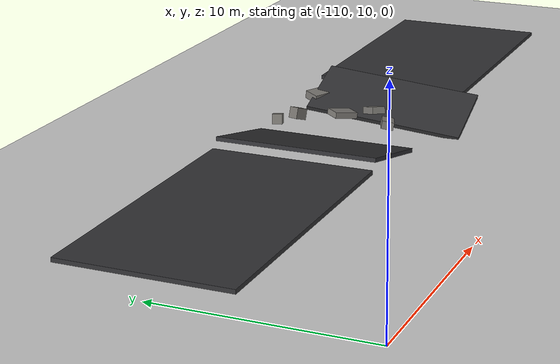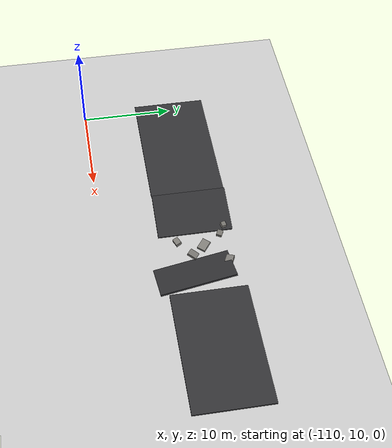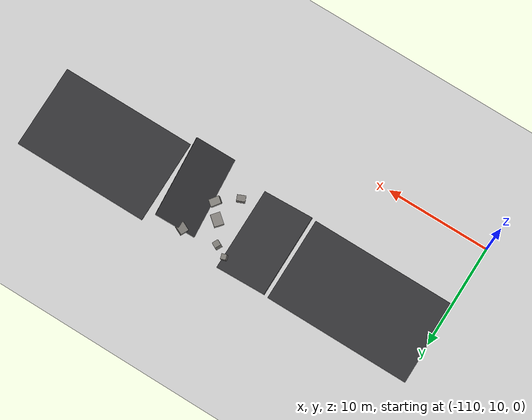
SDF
<sdf version="1.9">
 <world name="default">
  <physics type="ode">
   <max_step_size>0.004</max_step_size>
   <real_time_factor>1.0</real_time_factor>
   <real_time_update_rate>250</real_time_update_rate>
  </physics>
  <gravity>0 0 -9.8</gravity>
  <magnetic_field>6e-06 2.3e-05 -4.2e-05</magnetic_field>
  <atmosphere type="adiabatic"/>
  <scene>
   <grid>false</grid>
   <ambient>0.4 0.4 0.4 1</ambient>
   <background>0.7 0.7 0.7 1</background>
   <shadows>true</shadows>
  </scene>
  <model name="ground_plane">
   <static>true</static>
   <link name="link">
    <collision name="collision">
     <geometry><plane><normal>0 0 1</normal><size>1 1</size></plane></geometry>
    </collision>
    <visual name="visual">
     <geometry><plane><normal>0 0 1</normal><size>1500 1500</size></plane></geometry>
     <material>
      <ambient>0.8 0.8 0.8 1</ambient>
      <diffuse>0.8 0.8 0.8 1</diffuse>
      <specular>0.8 0.8 0.8 1</specular>
     </material>
    </visual>
    <inertial>
     <mass>1</mass>
     <inertia><ixx>1</ixx><ixy>0</ixy><ixz>0</ixz><iyy>1</iyy><iyz>0</iyz><izz>1</izz></inertia>
    </inertial>
   </link>
  </model>
  <model name="kirik_yol">
   <static>true</static>
   <pose>-90 20 1 0 0 0</pose>
   <link name="link">
    <collision name="col_a">
     <pose>-13 0 0.1 0 0 0</pose>
     <geometry><box><size>14 8 0.2</size></box></geometry>
    </collision>
    <visual name="vis_a">
     <pose>-13 0 0.1 0 0 0</pose>
     <geometry><box><size>14 8 0.2</size></box></geometry>
     <material>
      <ambient>0.16 0.16 0.17 1</ambient>
      <diffuse>0.20 0.20 0.21 1</diffuse>
      <specular>0.05 0.05 0.05 1</specular>
     </material>
    </visual>
    <collision name="col_b">
     <pose>-3.2 0 0.02 0 0.22 0</pose>
     <geometry><box><size>5 8 0.2</size></box></geometry>
    </collision>
    <visual name="vis_b">
     <pose>-3.2 0 0.02 0 0.22 0</pose>
     <geometry><box><size>5 8 0.2</size></box></geometry>
     <material>
      <ambient>0.15 0.15 0.16 1</ambient>
      <diffuse>0.19 0.19 0.20 1</diffuse>
      <specular>0.05 0.05 0.05 1</specular>
     </material>
    </visual>
    <collision name="col_c">
     <pose>4.6 -1.0 -0.02 0.12 -0.28 0.06</pose>
     <geometry><box><size>4 8 0.2</size></box></geometry>
    </collision>
    <visual name="vis_c">
     <pose>4.6 -1.0 -0.02 0.12 -0.28 0.06</pose>
     <geometry><box><size>4 8 0.2</size></box></geometry>
     <material>
      <ambient>0.15 0.15 0.16 1</ambient>
      <diffuse>0.19 0.19 0.20 1</diffuse>
      <specular>0.05 0.05 0.05 1</specular>
     </material>
    </visual>
    <collision name="col_d">
     <pose>13.5 0 0.1 0 0 0</pose>
     <geometry><box><size>13 8 0.2</size></box></geometry>
    </collision>
    <visual name="vis_d">
     <pose>13.5 0 0.1 0 0 0</pose>
     <geometry><box><size>13 8 0.2</size></box></geometry>
     <material>
      <ambient>0.16 0.16 0.17 1</ambient>
      <diffuse>0.20 0.20 0.21 1</diffuse>
      <specular>0.05 0.05 0.05 1</specular>
     </material>
    </visual>
    <collision name="col_r1">
     <pose>0.6 -2.2 0.20 0.20 0 0.40</pose>
     <geometry><box><size>0.8 0.6 0.4</size></box></geometry>
    </collision>
    <visual name="vis_r1">
     <pose>0.6 -2.2 0.20 0.20 0 0.40</pose>
     <geometry><box><size>0.8 0.6 0.4</size></box></geometry>
     <material><ambient>0.40 0.39 0.37 1</ambient><diffuse>0.48 0.47 0.45 1</diffuse></material>
    </visual>
    <collision name="col_r2">
     <pose>1.4 0.5 0.15 0 0.15 -0.70</pose>
     <geometry><box><size>1.2 0.9 0.3</size></box></geometry>
    </collision>
    <visual name="vis_r2">
     <pose>1.4 0.5 0.15 0 0.15 -0.70</pose>
     <geometry><box><size>1.2 0.9 0.3</size></box></geometry>
     <material><ambient>0.42 0.41 0.39 1</ambient><diffuse>0.50 0.49 0.47 1</diffuse></material>
    </visual>
    <collision name="col_r3">
     <pose>0.2 2.4 0.28 0.30 0.10 1.10</pose>
     <geometry><box><size>0.6 0.6 0.55</size></box></geometry>
    </collision>
    <visual name="vis_r3">
     <pose>0.2 2.4 0.28 0.30 0.10 1.10</pose>
     <geometry><box><size>0.6 0.6 0.55</size></box></geometry>
     <material><ambient>0.38 0.37 0.35 1</ambient><diffuse>0.46 0.45 0.43 1</diffuse></material>
    </visual>
    <collision name="col_r4">
     <pose>2.4 -0.8 0.18 0.10 0.25 0.90</pose>
     <geometry><box><size>1.0 0.7 0.35</size></box></geometry>
    </collision>
    <visual name="vis_r4">
     <pose>2.4 -0.8 0.18 0.10 0.25 0.90</pose>
     <geometry><box><size>1.0 0.7 0.35</size></box></geometry>
     <material><ambient>0.41 0.40 0.38 1</ambient><diffuse>0.49 0.48 0.46 1</diffuse></material>
    </visual>
    <collision name="col_r5">
     <pose>-0.9 3.0 0.25 0 0.20 0.30</pose>
     <geometry><box><size>0.5 0.5 0.5</size></box></geometry>
    </collision>
    <visual name="vis_r5">
     <pose>-0.9 3.0 0.25 0 0.20 0.30</pose>
     <geometry><box><size>0.5 0.5 0.5</size></box></geometry>
     <material><ambient>0.39 0.38 0.36 1</ambient><diffuse>0.47 0.46 0.44 1</diffuse></material>
    </visual>
    <collision name="col_r6">
     <pose>3.6 2.8 0.20 0.15 0 -0.45</pose>
     <geometry><box><size>0.9 0.8 0.4</size></box></geometry>
    </collision>
    <visual name="vis_r6">
     <pose>3.6 2.8 0.20 0.15 0 -0.45</pose>
     <geometry><box><size>0.9 0.8 0.4</size></box></geometry>
     <material><ambient>0.40 0.39 0.37 1</ambient><diffuse>0.48 0.47 0.45 1</diffuse></material>
    </visual>
   </link>
  </model>
  <light name="sunUTC" type="directional">
   <pose>0 0 500 0 -0 0</pose>
   <intensity>1</intensity>
   <direction>0.001 0.625 -0.78</direction>
   <diffuse>0.904 0.904 0.904 1</diffuse>
   <specular>0.271 0.271 0.271 1</specular>
   <attenuation><range>2000</range><linear>0</linear><constant>1</constant><quadratic>0</quadratic></attenuation>
   <spot><inner_angle>0</inner_angle><outer_angle>0</outer_angle><falloff>0</falloff></spot>
  </light>
  <spherical_coordinates>
   <surface_model>EARTH_WGS84</surface_model>
   <world_frame_orientation>ENU</world_frame_orientation>
   <latitude_deg>47.397971057728974</latitude_deg>
   <longitude_deg>8.546163739800146</longitude_deg>
   <elevation>0</elevation>
  </spherical_coordinates>
 </world>
</sdf>
